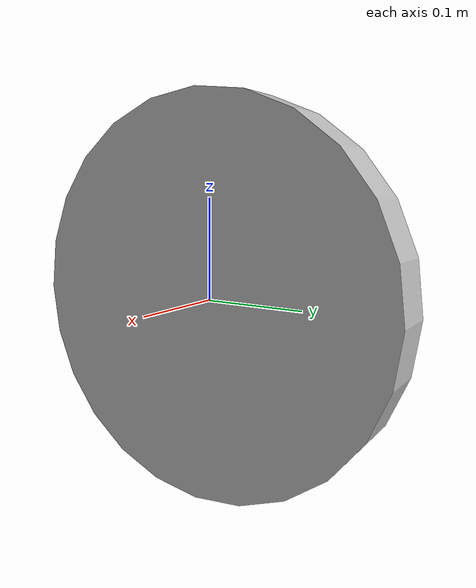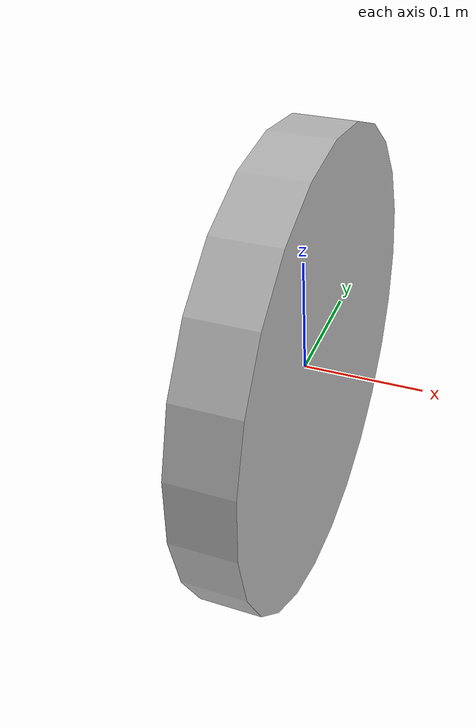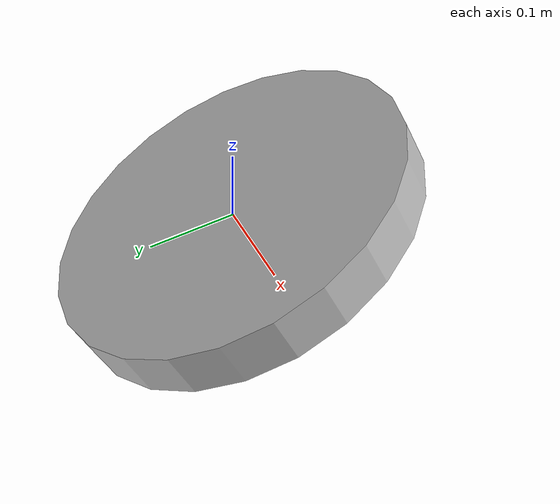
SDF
<?xml version='1.0' ?>

<!-- THIS FILE IS GENERATED FROM wheel.rsdf -->

<sdf version='1.6'>
  <model name='Wheel'>

    <link name='tilt_dummy'>
      <pose>0 0 0 0 0 0</pose>
      <inertial>
        <mass>0.1</mass>
      </inertial>
    </link>
    <link name='turn_dummy'>
      <pose>0 0 0 0 0 0</pose>
      <inertial>
        <mass>0.1</mass>
      </inertial>
    </link>
    <link name='x_dummy'>
      <pose>0 0 0 0 0 0</pose>
      <inertial>
        <mass>0.1</mass>
      </inertial>
    </link>
    <link name='y_dummy'>
      <pose>0 0 0 0 0 0</pose>
      <inertial>
        <mass>0.1</mass>
      </inertial>
    </link>
    <link name='z_dummy'>
      <pose>0 0 0 0 0 0</pose>
      <inertial>
        <mass>0.1</mass>
      </inertial>
    </link>

    <link name='wheel'>
      <pose>0 0 0 0 0 0</pose>
      <inertial>
        <mass>10.0</mass>
        <inertia>
          <ixx>0.10208333333333335</ixx>
          <iyy>0.20000000000000004</iyy>
          <izz>0.10208333333333335</izz>
          <ixy>0</ixy><ixz>0</ixz><iyz>0</iyz>
        </inertia>
      </inertial>

      <visual name='vis_wheel'>
        <pose>0 0 0 0 1.5708 0</pose>
        <geometry>
          <cylinder>
            <radius>0.2</radius>
            <length>0.05</length>
          </cylinder>
        </geometry>
      </visual>
      <collision name='col_wheel'>
        <pose>0 0 0 0 1.5708 0</pose>
        <geometry>
          <cylinder>
            <radius>0.2</radius>
            <length>0.05</length>
          </cylinder>
        </geometry>
      </collision>
    </link>

    <joint name='x' type='prismatic'>
      <pose>0 0 0 0 0 0</pose>
      <parent>world</parent>
      <child>x_dummy</child>
      <axis>
        <xyz>1 0 0</xyz>
        <limit>
          <effort>0.0</effort>
        </limit>
      </axis>
    </joint>

    <joint name='y' type='prismatic'>
      <pose>0 0 0 0 0 0</pose>
      <parent>x_dummy</parent>
      <child>y_dummy</child>
      <axis>
        <xyz>0 1 0</xyz>
        <limit>
          <effort>0.0</effort>
        </limit>
      </axis>
    </joint>

    <joint name='z' type='prismatic'>
      <pose>0 0 0 0 0 0</pose>
      <parent>y_dummy</parent>
      <child>z_dummy</child>
      <axis>
        <xyz>0 0 1</xyz>
        <limit>
          <effort>0.0</effort>
        </limit>
      </axis>
    </joint>

    <joint name='turn' type='revolute'>
      <!--With respect to child frame-->
      <pose>0 0 0 0 0 0</pose>
      <parent>z_dummy</parent>
      <child>turn_dummy</child>
      <axis>
        <xyz>0 0 1</xyz>
        <limit>
          <effort>0.0</effort>
        </limit>
      </axis>
    </joint>

    <joint name='tilt' type='revolute'>
      <!--With respect to child frame-->
      <pose>0 0 0 0 0 0</pose>
      <parent>turn_dummy</parent>
      <child>tilt_dummy</child>
      <axis>
        <xyz>0 1 0</xyz>
        <limit>
          <effort>0.0</effort>
        </limit>
      </axis>
    </joint>

    <joint name='roll' type='revolute'>
      <!--With respect to child frame-->
      <pose>0 0 0 0 0 0</pose>
      <parent>tilt_dummy</parent>
      <child>wheel</child>
      <axis>
        <xyz>1.0 0 0</xyz>
      </axis>
    </joint>

  </model>
</sdf>
